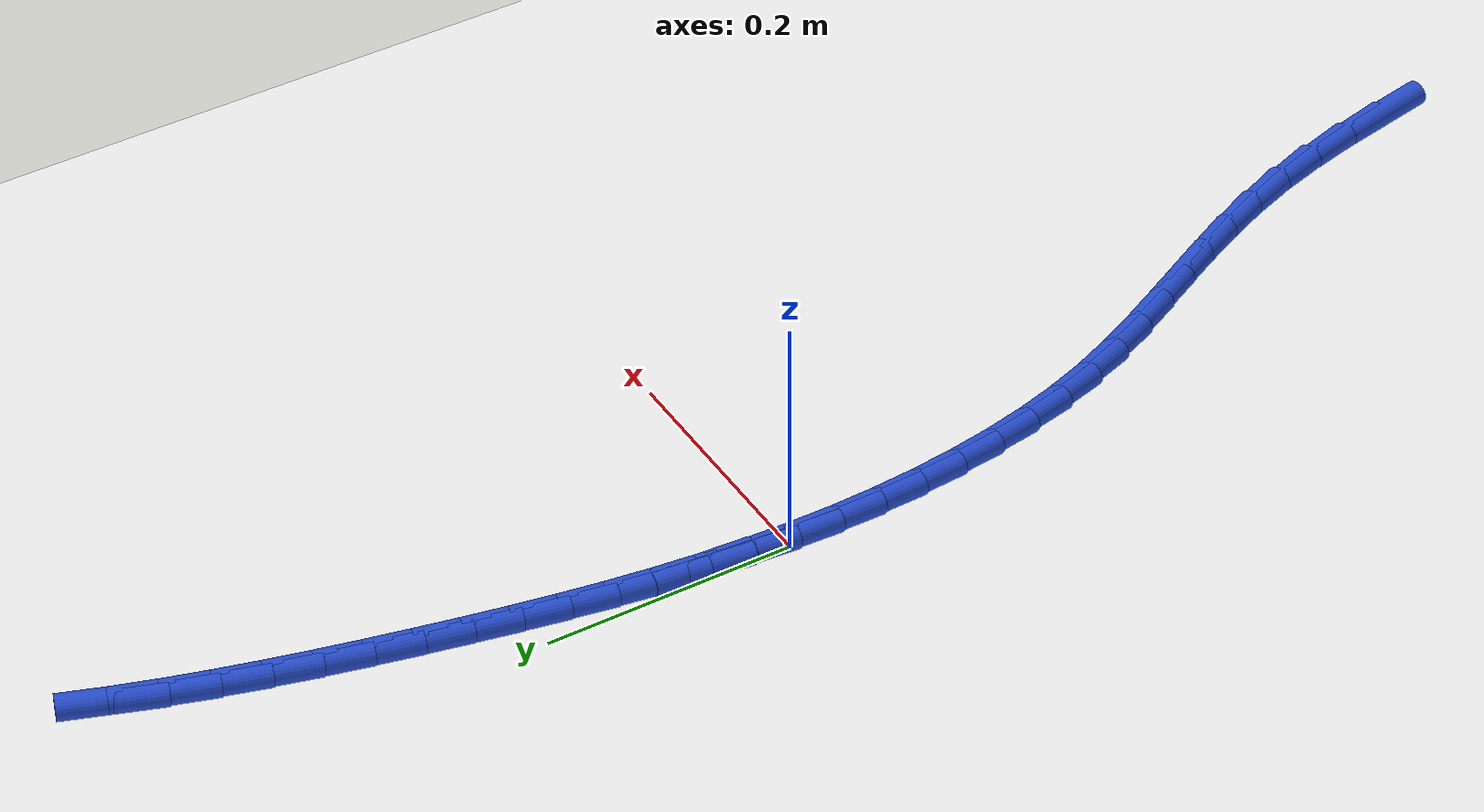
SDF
<sdf version="1.6">
 <world name="default">
  <model name="ground_plane">
   <static>1</static>
   <link name="link">
    <collision name="collision">
     <geometry><plane><normal>0 0 1</normal><size>100 100</size></plane></geometry>
     <surface><friction><ode><mu>100</mu><mu2>50</mu2></ode></friction></surface>
    </collision>
    <visual name="visual">
     <cast_shadows>0</cast_shadows>
     <geometry><plane><normal>0 0 1</normal><size>100 100</size></plane></geometry>
     <material>
      <script><uri>file://media/materials/scripts/gazebo.material</uri><name>Gazebo/WhiteGlow</name></script>
     </material>
    </visual>
   </link>
  </model>
  <model name="line">
   <link name="link_0">
    <pose>-4.336808689942018e-18 2.0816681711721685e-17 0.01 0 1.57 1.5228255407405091</pose>
    <collision name="collision">
     <geometry><cylinder><radius>0.01</radius><length>0.08</length></cylinder></geometry>
    </collision>
    <visual name="visual">
     <material>
      <script><name>Gazebo/Blue</name><uri>file://media/materials/scripts/gazebo.material</uri></script>
     </material>
     <geometry><cylinder><radius>0.01</radius><length>0.08</length></cylinder></geometry>
    </visual>
   </link>
   <link name="link_1">
    <pose>0.0017141860436077924 0.0357065432913914 0.01 0 1.57 1.4890325752673867</pose>
    <collision name="collision">
     <geometry><cylinder><radius>0.01</radius><length>0.08</length></cylinder></geometry>
    </collision>
    <visual name="visual">
     <material>
      <script><name>Gazebo/Blue</name><uri>file://media/materials/scripts/gazebo.material</uri></script>
     </material>
     <geometry><cylinder><radius>0.01</radius><length>0.08</length></cylinder></geometry>
    </visual>
   </link>
   <link name="link_2">
    <pose>0.004617474653295481 0.07113564083650696 0.01 0 1.57 1.4583774974147363</pose>
    <collision name="collision">
     <geometry><cylinder><radius>0.01</radius><length>0.08</length></cylinder></geometry>
    </collision>
    <visual name="visual">
     <material>
      <script><name>Gazebo/Blue</name><uri>file://media/materials/scripts/gazebo.material</uri></script>
     </material>
     <geometry><cylinder><radius>0.01</radius><length>0.08</length></cylinder></geometry>
    </visual>
   </link>
   <link name="link_3">
    <pose>0.008593571042337112 0.10635511716235745 0.01 0 1.57 1.4310927449233288</pose>
    <collision name="collision">
     <geometry><cylinder><radius>0.01</radius><length>0.08</length></cylinder></geometry>
    </collision>
    <visual name="visual">
     <material>
      <script><name>Gazebo/Blue</name><uri>file://media/materials/scripts/gazebo.material</uri></script>
     </material>
     <geometry><cylinder><radius>0.01</radius><length>0.08</length></cylinder></geometry>
    </visual>
   </link>
   <link name="link_4">
    <pose>0.013526180424006766 0.14143279679595372 0.01 0 1.57 1.407347139483378</pose>
    <collision name="collision">
     <geometry><cylinder><radius>0.01</radius><length>0.08</length></cylinder></geometry>
    </collision>
    <visual name="visual">
     <material>
      <script><name>Gazebo/Blue</name><uri>file://media/materials/scripts/gazebo.material</uri></script>
     </material>
     <geometry><cylinder><radius>0.01</radius><length>0.08</length></cylinder></geometry>
    </visual>
   </link>
   <link name="link_5">
    <pose>0.0192990080115785 0.17643650426430643 0.01 0 1.57 1.387251224445408</pose>
    <collision name="collision">
     <geometry><cylinder><radius>0.01</radius><length>0.08</length></cylinder></geometry>
    </collision>
    <visual name="visual">
     <material>
      <script><name>Gazebo/Blue</name><uri>file://media/materials/scripts/gazebo.material</uri></script>
     </material>
     <geometry><cylinder><radius>0.01</radius><length>0.08</length></cylinder></geometry>
    </visual>
   </link>
   <link name="link_6">
    <pose>0.025795759018326373 0.2114340640944264 0.01 0 1.57 1.3708642589614066</pose>
    <collision name="collision">
     <geometry><cylinder><radius>0.01</radius><length>0.08</length></cylinder></geometry>
    </collision>
    <visual name="visual">
     <material>
      <script><name>Gazebo/Blue</name><uri>file://media/materials/scripts/gazebo.material</uri></script>
     </material>
     <geometry><cylinder><radius>0.01</radius><length>0.08</length></cylinder></geometry>
    </visual>
   </link>
   <link name="link_7">
    <pose>0.032900138657524454 0.2464933008133243 0.01 0 1.57 1.3582017720819226</pose>
    <collision name="collision">
     <geometry><cylinder><radius>0.01</radius><length>0.08</length></cylinder></geometry>
    </collision>
    <visual name="visual">
     <material>
      <script><name>Gazebo/Blue</name><uri>file://media/materials/scripts/gazebo.material</uri></script>
     </material>
     <geometry><cylinder><radius>0.01</radius><length>0.08</length></cylinder></geometry>
    </visual>
   </link>
   <link name="link_8">
    <pose>0.0404958521424468 0.28168203894801097 0.01 0 1.57 1.3480790394034992</pose>
    <collision name="collision">
     <geometry><cylinder><radius>0.01</radius><length>0.08</length></cylinder></geometry>
    </collision>
    <visual name="visual">
     <material>
      <script><name>Gazebo/Blue</name><uri>file://media/materials/scripts/gazebo.material</uri></script>
     </material>
     <geometry><cylinder><radius>0.01</radius><length>0.08</length></cylinder></geometry>
    </visual>
   </link>
   <link name="link_9">
    <pose>0.04850288556423894 0.3170371867375543 0.01 0 1.57 1.3357887444665462</pose>
    <collision name="collision">
     <geometry><cylinder><radius>0.01</radius><length>0.08</length></cylinder></geometry>
    </collision>
    <visual name="visual">
     <material>
      <script><name>Gazebo/Blue</name><uri>file://media/materials/scripts/gazebo.material</uri></script>
     </material>
     <geometry><cylinder><radius>0.01</radius><length>0.08</length></cylinder></geometry>
    </visual>
   </link>
   <link name="link_10">
    <pose>0.05698697334673555 0.35247145483581954 0.01 0 1.57 1.3201157322766965</pose>
    <collision name="collision">
     <geometry><cylinder><radius>0.01</radius><length>0.08</length></cylinder></geometry>
    </collision>
    <visual name="visual">
     <material>
      <script><name>Gazebo/Blue</name><uri>file://media/materials/scripts/gazebo.material</uri></script>
     </material>
     <geometry><cylinder><radius>0.01</radius><length>0.08</length></cylinder></geometry>
    </visual>
   </link>
   <link name="link_11">
    <pose>0.06605044387418865 0.38786637081942593 0.01 0 1.57 1.3009800684974464</pose>
    <collision name="collision">
     <geometry><cylinder><radius>0.01</radius><length>0.08</length></cylinder></geometry>
    </collision>
    <visual name="visual">
     <material>
      <script><name>Gazebo/Blue</name><uri>file://media/materials/scripts/gazebo.material</uri></script>
     </material>
     <geometry><cylinder><radius>0.01</radius><length>0.08</length></cylinder></geometry>
    </visual>
   </link>
   <link name="link_12">
    <pose>0.07579562553095731 0.4231034622649014 0.01 0 1.57 1.2782644199969098</pose>
    <collision name="collision">
     <geometry><cylinder><radius>0.01</radius><length>0.08</length></cylinder></geometry>
    </collision>
    <visual name="visual">
     <material>
      <script><name>Gazebo/Blue</name><uri>file://media/materials/scripts/gazebo.material</uri></script>
     </material>
     <geometry><cylinder><radius>0.01</radius><length>0.08</length></cylinder></geometry>
    </visual>
   </link>
   <link name="link_13">
    <pose>0.08632484670140053 0.4580642567487738 0.01 0 1.57 1.2518191796785554</pose>
    <collision name="collision">
     <geometry><cylinder><radius>0.01</radius><length>0.08</length></cylinder></geometry>
    </collision>
    <visual name="visual">
     <material>
      <script><name>Gazebo/Blue</name><uri>file://media/materials/scripts/gazebo.material</uri></script>
     </material>
     <geometry><cylinder><radius>0.01</radius><length>0.08</length></cylinder></geometry>
    </visual>
   </link>
   <link name="link_14">
    <pose>0.09774043576987733 0.49263028184757096 0.01 0 1.57 1.221468965545286</pose>
    <collision name="collision">
     <geometry><cylinder><radius>0.01</radius><length>0.08</length></cylinder></geometry>
    </collision>
    <visual name="visual">
     <material>
      <script><name>Gazebo/Blue</name><uri>file://media/materials/scripts/gazebo.material</uri></script>
     </material>
     <geometry><cylinder><radius>0.01</radius><length>0.08</length></cylinder></geometry>
    </visual>
   </link>
   <link name="link_201">
    <pose>0.18759155235434702 -0.6588242506703953 0.01 0 1.57 -1.372455803068021</pose>
    <collision name="collision">
     <geometry><cylinder><radius>0.01</radius><length>0.08</length></cylinder></geometry>
    </collision>
    <visual name="visual">
     <material>
      <script><name>Gazebo/Blue</name><uri>file://media/materials/scripts/gazebo.material</uri></script>
     </material>
     <geometry><cylinder><radius>0.01</radius><length>0.08</length></cylinder></geometry>
    </visual>
   </link>
   <link name="link_202">
    <pose>0.17937573206661953 -0.6179460550361053 0.01 0 1.57 -1.3351069908462805</pose>
    <collision name="collision">
     <geometry><cylinder><radius>0.01</radius><length>0.08</length></cylinder></geometry>
    </collision>
    <visual name="visual">
     <material>
      <script><name>Gazebo/Blue</name><uri>file://media/materials/scripts/gazebo.material</uri></script>
     </material>
     <geometry><cylinder><radius>0.01</radius><length>0.08</length></cylinder></geometry>
    </visual>
   </link>
   <link name="link_203">
    <pose>0.16986803601093672 -0.5783558400170059 0.01 0 1.57 -1.2839522260836478</pose>
    <collision name="collision">
     <geometry><cylinder><radius>0.01</radius><length>0.08</length></cylinder></geometry>
    </collision>
    <visual name="visual">
     <material>
      <script><name>Gazebo/Blue</name><uri>file://media/materials/scripts/gazebo.material</uri></script>
     </material>
     <geometry><cylinder><radius>0.01</radius><length>0.08</length></cylinder></geometry>
    </visual>
   </link>
   <link name="link_204">
    <pose>0.15871182125064348 -0.54053548033325 0.01 0 1.57 -1.2213418845970998</pose>
    <collision name="collision">
     <geometry><cylinder><radius>0.01</radius><length>0.08</length></cylinder></geometry>
    </collision>
    <visual name="visual">
     <material>
      <script><name>Gazebo/Blue</name><uri>file://media/materials/scripts/gazebo.material</uri></script>
     </material>
     <geometry><cylinder><radius>0.01</radius><length>0.08</length></cylinder></geometry>
    </visual>
   </link>
   <link name="link_205">
    <pose>0.14569443447463648 -0.5048137008154119 0.01 0 1.57 -1.1661332217167357</pose>
    <collision name="collision">
     <geometry><cylinder><radius>0.01</radius><length>0.08</length></cylinder></geometry>
    </collision>
    <visual name="visual">
     <material>
      <script><name>Gazebo/Blue</name><uri>file://media/materials/scripts/gazebo.material</uri></script>
     </material>
     <geometry><cylinder><radius>0.01</radius><length>0.08</length></cylinder></geometry>
    </visual>
   </link>
   <link name="link_206">
    <pose>0.13117425326165194 -0.4709118678306479 0.01 0 1.57 -1.1253344814026198</pose>
    <collision name="collision">
     <geometry><cylinder><radius>0.01</radius><length>0.08</length></cylinder></geometry>
    </collision>
    <visual name="visual">
     <material>
      <script><name>Gazebo/Blue</name><uri>file://media/materials/scripts/gazebo.material</uri></script>
     </material>
     <geometry><cylinder><radius>0.01</radius><length>0.08</length></cylinder></geometry>
    </visual>
   </link>
   <link name="link_207">
    <pose>0.1156511915311692 -0.438400807213262 0.01 0 1.57 -1.1007968975142588</pose>
    <collision name="collision">
     <geometry><cylinder><radius>0.01</radius><length>0.08</length></cylinder></geometry>
    </collision>
    <visual name="visual">
     <material>
      <script><name>Gazebo/Blue</name><uri>file://media/materials/scripts/gazebo.material</uri></script>
     </material>
     <geometry><cylinder><radius>0.01</radius><length>0.08</length></cylinder></geometry>
    </visual>
   </link>
   <link name="link_208">
    <pose>0.09962516320266879 -0.4068513447975601 0.01 0 1.57 -1.093812568691988</pose>
    <collision name="collision">
     <geometry><cylinder><radius>0.01</radius><length>0.08</length></cylinder></geometry>
    </collision>
    <visual name="visual">
     <material>
      <script><name>Gazebo/Blue</name><uri>file://media/materials/scripts/gazebo.material</uri></script>
     </material>
     <geometry><cylinder><radius>0.01</radius><length>0.08</length></cylinder></geometry>
    </visual>
   </link>
   <link name="link_209">
    <pose>0.08359608219563008 -0.37583430641784554 0.01 0 1.57 -1.1052013130878924</pose>
    <collision name="collision">
     <geometry><cylinder><radius>0.01</radius><length>0.08</length></cylinder></geometry>
    </collision>
    <visual name="visual">
     <material>
      <script><name>Gazebo/Blue</name><uri>file://media/materials/scripts/gazebo.material</uri></script>
     </material>
     <geometry><cylinder><radius>0.01</radius><length>0.08</length></cylinder></geometry>
    </visual>
   </link>
   <link name="link_210">
    <pose>0.06806386242953279 -0.34492051790842276 0.01 0 1.57 -1.1353023786812084</pose>
    <collision name="collision">
     <geometry><cylinder><radius>0.01</radius><length>0.08</length></cylinder></geometry>
    </collision>
    <visual name="visual">
     <material>
      <script><name>Gazebo/Blue</name><uri>file://media/materials/scripts/gazebo.material</uri></script>
     </material>
     <geometry><cylinder><radius>0.01</radius><length>0.08</length></cylinder></geometry>
    </visual>
   </link>
   <link name="link_211">
    <pose>0.05352841782385664 -0.31368080510359575 0.01 0 1.57 -1.1838178822718948</pose>
    <collision name="collision">
     <geometry><cylinder><radius>0.01</radius><length>0.08</length></cylinder></geometry>
    </collision>
    <visual name="visual">
     <material>
      <script><name>Gazebo/Blue</name><uri>file://media/materials/scripts/gazebo.material</uri></script>
     </material>
     <geometry><cylinder><radius>0.01</radius><length>0.08</length></cylinder></geometry>
    </visual>
   </link>
   <link name="link_212">
    <pose>0.04048966229779417 -0.28168599383797205 0.01 0 1.57 -1.2459147447222372</pose>
    <collision name="collision">
     <geometry><cylinder><radius>0.01</radius><length>0.08</length></cylinder></geometry>
    </collision>
    <visual name="visual">
     <material>
      <script><name>Gazebo/Blue</name><uri>file://media/materials/scripts/gazebo.material</uri></script>
     </material>
     <geometry><cylinder><radius>0.01</radius><length>0.08</length></cylinder></geometry>
    </visual>
   </link>
   <link name="link_213">
    <pose>0.02934938781005708 -0.24861073070450287 0.01 0 1.57 -1.3061937891089699</pose>
    <collision name="collision">
     <geometry><cylinder><radius>0.01</radius><length>0.08</length></cylinder></geometry>
    </collision>
    <visual name="visual">
     <material>
      <script><name>Gazebo/Blue</name><uri>file://media/materials/scripts/gazebo.material</uri></script>
     </material>
     <geometry><cylinder><radius>0.01</radius><length>0.08</length></cylinder></geometry>
    </visual>
   </link>
   <link name="link_214">
    <pose>0.020118581061402786 -0.21454316502320822 0.01 0 1.57 -1.361465329346591</pose>
    <collision name="collision">
     <geometry><cylinder><radius>0.01</radius><length>0.08</length></cylinder></geometry>
    </collision>
    <visual name="visual">
     <material>
      <script><name>Gazebo/Blue</name><uri>file://media/materials/scripts/gazebo.material</uri></script>
     </material>
     <geometry><cylinder><radius>0.01</radius><length>0.08</length></cylinder></geometry>
    </visual>
   </link>
   <link name="link_215">
    <pose>0.01271094628236315 -0.17967437862567548 0.01 0 1.57 -1.412302374629312</pose>
    <collision name="collision">
     <geometry><cylinder><radius>0.01</radius><length>0.08</length></cylinder></geometry>
    </collision>
    <visual name="visual">
     <material>
      <script><name>Gazebo/Blue</name><uri>file://media/materials/scripts/gazebo.material</uri></script>
     </material>
     <geometry><cylinder><radius>0.01</radius><length>0.08</length></cylinder></geometry>
    </visual>
   </link>
   <link name="link_216">
    <pose>0.00704018770346992 -0.14419545334349132 0.01 0 1.57 -1.4592720338483085</pose>
    <collision name="collision">
     <geometry><cylinder><radius>0.01</radius><length>0.08</length></cylinder></geometry>
    </collision>
    <visual name="visual">
     <material>
      <script><name>Gazebo/Blue</name><uri>file://media/materials/scripts/gazebo.material</uri></script>
     </material>
     <geometry><cylinder><radius>0.01</radius><length>0.08</length></cylinder></geometry>
    </visual>
   </link>
   <link name="link_217">
    <pose>0.0030200095552552226 -0.1082974710082448 0.01 0 1.57 -1.5029193533388314</pose>
    <collision name="collision">
     <geometry><cylinder><radius>0.01</radius><length>0.08</length></cylinder></geometry>
    </collision>
    <visual name="visual">
     <material>
      <script><name>Gazebo/Blue</name><uri>file://media/materials/scripts/gazebo.material</uri></script>
     </material>
     <geometry><cylinder><radius>0.01</radius><length>0.08</length></cylinder></geometry>
    </visual>
   </link>
   <link name="link_218">
    <pose>0.0005641160682507583 -0.07217151345152258 0.01 0 1.57 -1.5437612256073099</pose>
    <collision name="collision">
     <geometry><cylinder><radius>0.01</radius><length>0.08</length></cylinder></geometry>
    </collision>
    <visual name="visual">
     <material>
      <script><name>Gazebo/Blue</name><uri>file://media/materials/scripts/gazebo.material</uri></script>
     </material>
     <geometry><cylinder><radius>0.01</radius><length>0.08</length></cylinder></geometry>
    </visual>
   </link>
   <link name="link_219">
    <pose>-0.00041378852701161404 -0.03600866250491204 0.01 0 1.57 1.55930547193136</pose>
    <collision name="collision">
     <geometry><cylinder><radius>0.01</radius><length>0.08</length></cylinder></geometry>
    </collision>
    <visual name="visual">
     <material>
      <script><name>Gazebo/Blue</name><uri>file://media/materials/scripts/gazebo.material</uri></script>
     </material>
     <geometry><cylinder><radius>0.01</radius><length>0.08</length></cylinder></geometry>
    </visual>
   </link>
   <link name="link_220">
    <pose>-5.204170427930421e-18 2.42861286636753e-16 0.01 0 1.57 1.5226277163617192</pose>
    <collision name="collision">
     <geometry><cylinder><radius>0.01</radius><length>0.08</length></cylinder></geometry>
    </collision>
    <visual name="visual">
     <material>
      <script><name>Gazebo/Blue</name><uri>file://media/materials/scripts/gazebo.material</uri></script>
     </material>
     <geometry><cylinder><radius>0.01</radius><length>0.08</length></cylinder></geometry>
    </visual>
   </link>
   <link name="link_221">
    <pose>0.0017191858798173629 0.035663392231624215 0.01 0 1.57 1.4873431489915472</pose>
    <collision name="collision">
     <geometry><cylinder><radius>0.01</radius><length>0.08</length></cylinder></geometry>
    </collision>
    <visual name="visual">
     <material>
      <script><name>Gazebo/Blue</name><uri>file://media/materials/scripts/gazebo.material</uri></script>
     </material>
     <geometry><cylinder><radius>0.01</radius><length>0.08</length></cylinder></geometry>
    </visual>
   </link>
   <link name="link_222">
    <pose>0.004657473342972517 0.07079043235837591 0.01 0 1.57 1.505098598864517</pose>
    <collision name="collision">
     <geometry><cylinder><radius>0.01</radius><length>0.08</length></cylinder></geometry>
    </collision>
    <visual name="visual">
     <material>
      <script><name>Gazebo/Blue</name><uri>file://media/materials/scripts/gazebo.material</uri></script>
     </material>
     <geometry><cylinder><radius>0.01</radius><length>0.08</length></cylinder></geometry>
    </visual>
   </link>
  </model>
 </world>
</sdf>
